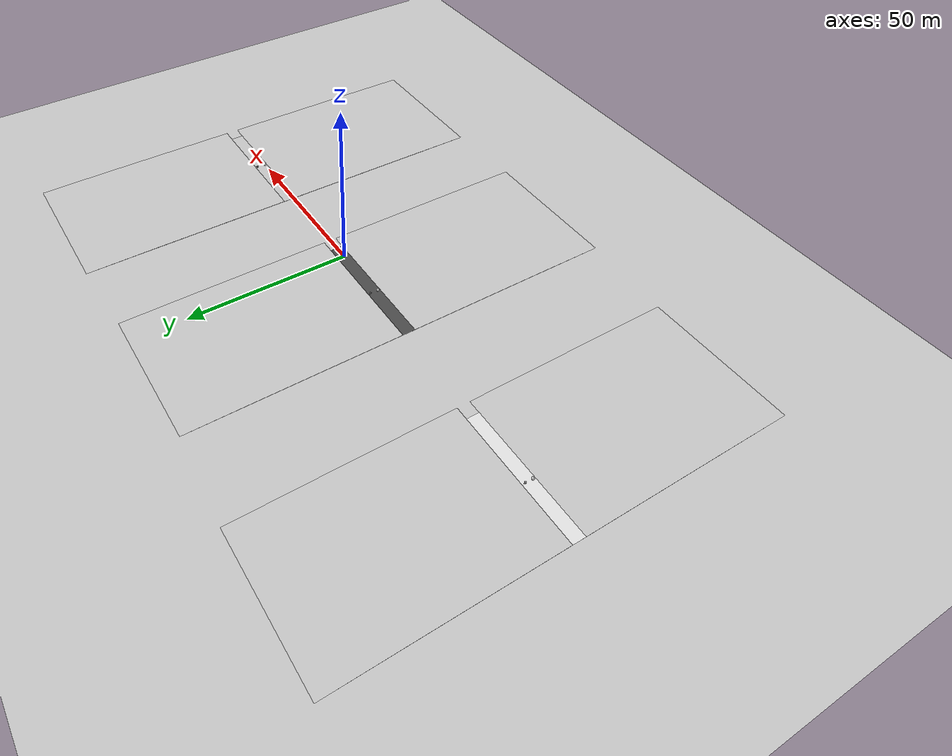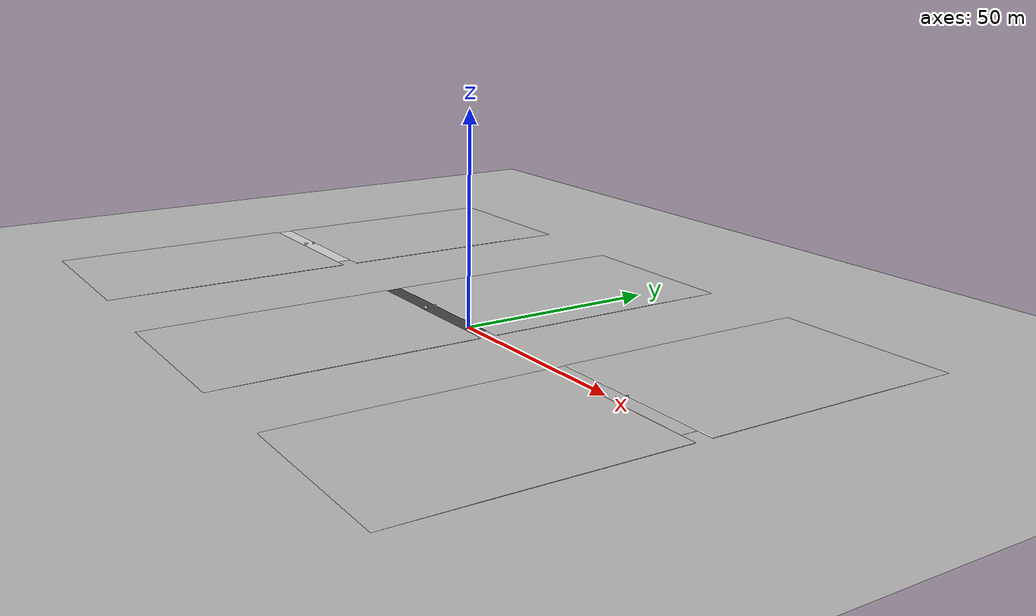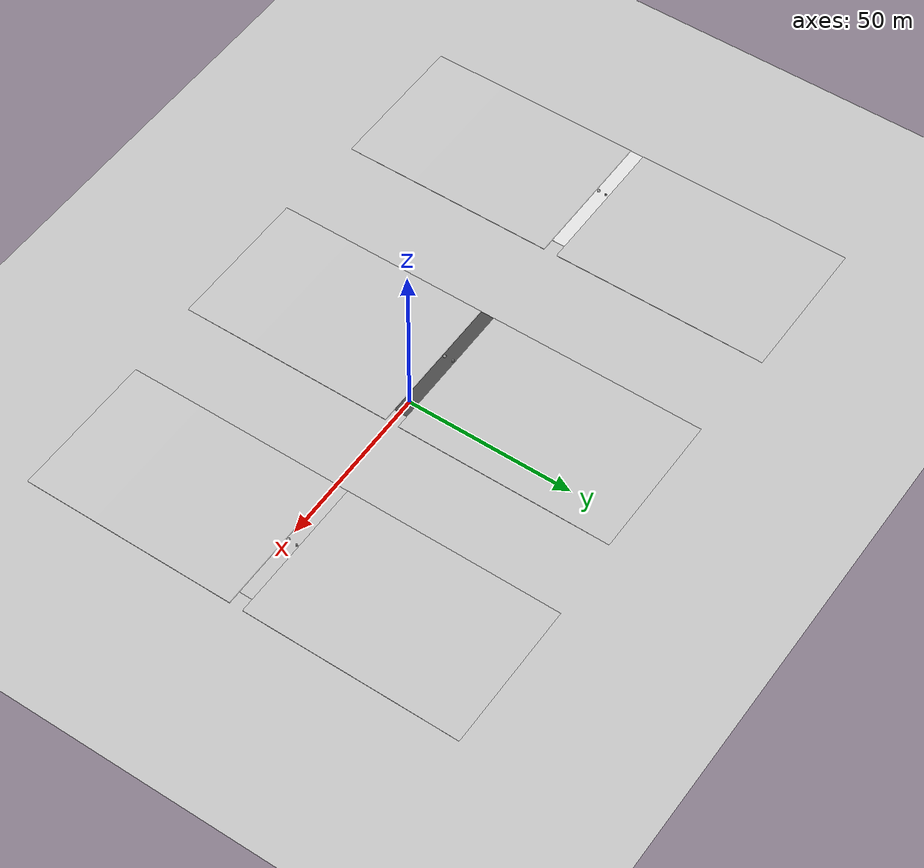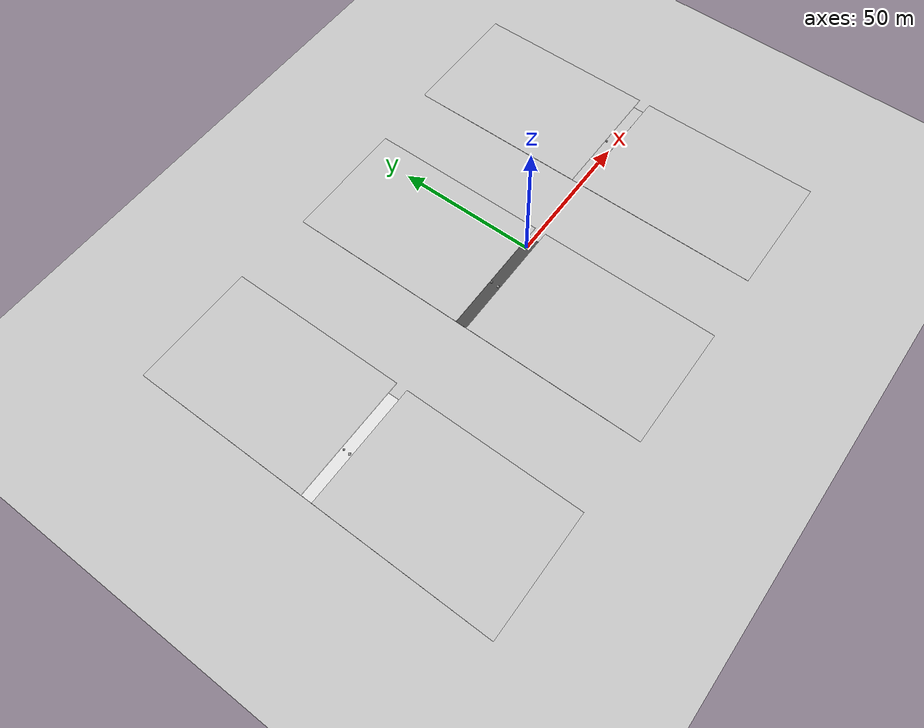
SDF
<sdf version="1.6">
 <world name="default">
  <light name="sun" type="directional">
   <pose>0 0 10 0 -0 0</pose>
   <diffuse>0.8 0.8 0.8 1</diffuse>
   <specular>0.2 0.2 0.2 1</specular>
   <attenuation>
    <range>1000</range>
    <constant>0.9</constant>
    <linear>0.01</linear>
    <quadratic>0.001</quadratic>
   </attenuation>
   <direction>-0.5 0.1 -0.9</direction>
  </light>
  <model name="ground_plane">
   <static>1</static>
   <link name="link">
    <collision name="collision">
     <geometry><plane><normal>0 0 1</normal><size>500 100</size></plane></geometry>
     <surface>
      <contact><collide_bitmask>65535</collide_bitmask></contact>
      <friction><ode><mu>100</mu><mu2>50</mu2></ode></friction>
     </surface>
    </collision>
    <visual name="visual">
     <cast_shadows>0</cast_shadows>
     <geometry><plane><normal>0 0 1</normal><size>500 100</size></plane></geometry>
     <material>
      <script><uri>file://media/materials/scripts/gazebo.material</uri><name>Gazebo/Grey</name></script>
     </material>
    </visual>
   </link>
  </model>
  <gravity>0 0 -9.8</gravity>
  <magnetic_field>6e-06 2.3e-05 -4.2e-05</magnetic_field>
  <atmosphere type="adiabatic"/>
  <physics name="default_physics" default="0" type="ode">
   <max_step_size>0.001</max_step_size>
   <real_time_factor>1</real_time_factor>
   <real_time_update_rate>1000</real_time_update_rate>
  </physics>
  <scene><ambient>0.4 0.4 0.4 1</ambient><background>0.7 0.7 0.7 1</background><shadows>1</shadows></scene>
  <spherical_coordinates>
   <surface_model>EARTH_WGS84</surface_model>
   <latitude_deg>0</latitude_deg>
   <longitude_deg>0</longitude_deg>
   <elevation>0</elevation>
   <heading_deg>0</heading_deg>
  </spherical_coordinates>
  <model name="road_dashed_two_white">
   <static>1</static>
   <link name="link">
    <collision name="collision"><geometry><box><size>40 4 0.02</size></box></geometry></collision>
    <visual name="visual">
     <cast_shadows>0</cast_shadows>
     <geometry><box><size>40 4 0.02</size></box></geometry>
     <material>
      <script>
       <uri>model://road_dashed_two_white/materials/scripts</uri>
       <uri>model://road_dashed_two_white/materials/textures</uri>
       <name>DashedTwoWhite</name>
      </script>
     </material>
    </visual>
   </link>
   <pose>-87.4652 1.8189 0 0 -0 0</pose>
  </model>
  <model name="road_plain_white">
   <static>1</static>
   <link name="link">
    <collision name="collision"><geometry><box><size>40 4 0.02</size></box></geometry></collision>
    <visual name="visual">
     <cast_shadows>0</cast_shadows>
     <geometry><box><size>40 4 0.02</size></box></geometry>
     <material>
      <ambient>0.8 0.8 0.8 1</ambient>
      <diffuse>0.8 0.8 0.8 1</diffuse>
      <specular>0.1 0.1 0.1 1</specular>
      <emissive>0 0 0 0</emissive>
     </material>
    </visual>
   </link>
   <pose>52.1611 1.44385 0 0 -0 0</pose>
  </model>
  <model name="road_light_grid">
   <static>1</static>
   <link name="link">
    <collision name="collision"><geometry><box><size>40 4 0.02</size></box></geometry></collision>
    <visual name="visual">
     <cast_shadows>0</cast_shadows>
     <geometry><box><size>40 4 0.02</size></box></geometry>
     <material>
      <script>
       <uri>model://road_light_grid/materials/scripts</uri>
       <uri>model://road_light_grid/materials/textures</uri>
       <name>RoadLightGrid</name>
      </script>
     </material>
    </visual>
   </link>
   <pose>-15.7243 0.139123 0 0 -0 0</pose>
  </model>
  <model name="unit_box_clone_2">
   <pose>-17.5286 -1.10727 0.26 0 -0 3e-06</pose>
   <link name="link">
    <inertial>
     <mass>1</mass>
     <inertia>
      <ixx>0.166667</ixx>
      <ixy>0</ixy>
      <ixz>0</ixz>
      <iyy>0.166667</iyy>
      <iyz>0</iyz>
      <izz>0.166667</izz>
     </inertia>
    </inertial>
    <collision name="collision"><geometry><box><size>0.5 0.5 0.5</size></box></geometry></collision>
    <visual name="visual">
     <geometry><box><size>0.5 0.5 0.5</size></box></geometry>
     <material>
      <script><name>Gazebo/Grey</name><uri>file://media/materials/scripts/gazebo.material</uri></script>
     </material>
    </visual>
    <visual name="visual_sphere_cue">
     <geometry><sphere><radius>0.45</radius></sphere></geometry>
     <plugin name="blink" filename="libBlinkVisualPlugin.so">
      <color_a>0 1 0 0.15</color_a>
      <color_b>0 1 0 0.15</color_b>
      <period>2</period>
      <use_wall_time>true</use_wall_time>
     </plugin>
     <material>
      <script><uri>file://media/materials/scripts/gazebo.material</uri><name>__default__</name></script>
     </material>
    </visual>
   </link>
  </model>
  <model name="unit_box_clone_3">
   <pose>-89.5889 0.565083 0.26 0 -0 3e-06</pose>
   <link name="link">
    <inertial>
     <mass>1</mass>
     <inertia>
      <ixx>0.166667</ixx>
      <ixy>0</ixy>
      <ixz>0</ixz>
      <iyy>0.166667</iyy>
      <iyz>0</iyz>
      <izz>0.166667</izz>
     </inertia>
    </inertial>
    <collision name="collision"><geometry><box><size>0.5 0.5 0.5</size></box></geometry></collision>
    <visual name="visual">
     <geometry><box><size>0.5 0.5 0.5</size></box></geometry>
     <material>
      <script><name>Gazebo/Grey</name><uri>file://media/materials/scripts/gazebo.material</uri></script>
     </material>
    </visual>
    <visual name="visual_sphere_cue">
     <geometry><sphere><radius>0.45</radius></sphere></geometry>
     <plugin name="blink" filename="libBlinkVisualPlugin.so">
      <color_a>0 1 0 0.15</color_a>
      <color_b>0 1 0 0.15</color_b>
      <period>2</period>
      <use_wall_time>true</use_wall_time>
     </plugin>
     <material>
      <script><uri>file://media/materials/scripts/gazebo.material</uri><name>__default__</name></script>
     </material>
    </visual>
   </link>
  </model>
  <model name="unit_box_clone_5">
   <pose>52.794 0.093032 0.26 0 0 -0.012581</pose>
   <link name="link">
    <inertial>
     <mass>1</mass>
     <inertia>
      <ixx>0.166667</ixx>
      <ixy>0</ixy>
      <ixz>0</ixz>
      <iyy>0.166667</iyy>
      <iyz>0</iyz>
      <izz>0.166667</izz>
     </inertia>
    </inertial>
    <collision name="collision"><geometry><box><size>0.5 0.5 0.5</size></box></geometry></collision>
    <visual name="visual">
     <geometry><box><size>0.5 0.5 0.5</size></box></geometry>
     <material>
      <script><name>Gazebo/Grey</name><uri>file://media/materials/scripts/gazebo.material</uri></script>
     </material>
    </visual>
    <visual name="visual_sphere_cue">
     <geometry><sphere><radius>0.45</radius></sphere></geometry>
     <plugin name="blink" filename="libBlinkVisualPlugin.so">
      <color_a>0 1 0 0.15</color_a>
      <color_b>0 1 0 0.15</color_b>
      <period>2</period>
      <use_wall_time>true</use_wall_time>
     </plugin>
     <material>
      <script><uri>file://media/materials/scripts/gazebo.material</uri><name>__default__</name></script>
     </material>
    </visual>
   </link>
  </model>
  <model name="unit_box_evil">
   <pose>53.0304 2.77788 0.26 0 0 -0.764275</pose>
   <link name="link">
    <inertial>
     <mass>1</mass>
     <inertia>
      <ixx>0.166667</ixx>
      <ixy>0</ixy>
      <ixz>0</ixz>
      <iyy>0.166667</iyy>
      <iyz>0</iyz>
      <izz>0.166667</izz>
     </inertia>
    </inertial>
    <collision name="collision"><geometry><box><size>0.5 0.5 0.5</size></box></geometry></collision>
    <visual name="visual">
     <geometry><box><size>0.5 0.5 0.5</size></box></geometry>
     <material>
      <script><name>Gazebo/Grey</name><uri>file://media/materials/scripts/gazebo.material</uri></script>
     </material>
    </visual>
   </link>
   <plugin name="model_push" filename="libvisual_cue_plugin.so"/>
  </model>
  <model name="unit_box_evil__2">
   <pose>-17.5221 1.48271 0.26 0 0 -0.7886</pose>
   <link name="link">
    <inertial>
     <mass>1</mass>
     <inertia>
      <ixx>0.166667</ixx>
      <ixy>0</ixy>
      <ixz>0</ixz>
      <iyy>0.166667</iyy>
      <iyz>0</iyz>
      <izz>0.166667</izz>
     </inertia>
    </inertial>
    <collision name="collision"><geometry><box><size>0.5 0.5 0.5</size></box></geometry></collision>
    <visual name="visual">
     <geometry><box><size>0.5 0.5 0.5</size></box></geometry>
     <material>
      <script><name>Gazebo/Grey</name><uri>file://media/materials/scripts/gazebo.material</uri></script>
     </material>
    </visual>
   </link>
   <plugin name="model_push" filename="libvisual_cue_plugin.so"/>
  </model>
  <model name="unit_box_evil__3">
   <pose>-89.5374 2.87473 0.26 0 0 -0.788601</pose>
   <link name="link">
    <inertial>
     <mass>1</mass>
     <inertia>
      <ixx>0.166667</ixx>
      <ixy>0</ixy>
      <ixz>0</ixz>
      <iyy>0.166667</iyy>
      <iyz>0</iyz>
      <izz>0.166667</izz>
     </inertia>
    </inertial>
    <collision name="collision"><geometry><box><size>0.5 0.5 0.5</size></box></geometry></collision>
    <visual name="visual">
     <geometry><box><size>0.5 0.5 0.5</size></box></geometry>
     <material>
      <script><name>Gazebo/Grey</name><uri>file://media/materials/scripts/gazebo.material</uri></script>
     </material>
    </visual>
   </link>
   <plugin name="model_push" filename="libvisual_cue_plugin.so"/>
  </model>
  <model name="side_step">
   <static>1</static>
   <link name="step_1">
    <collision name="collision">
     <geometry><mesh><uri>model://side_step/meshes/side_step.dae</uri><scale>22 3 0.4</scale></mesh></geometry>
    </collision>
    <visual name="visual">
     <geometry><mesh><uri>model://side_step/meshes/side_step.dae</uri><scale>22 3 0.4</scale></mesh></geometry>
     <material>
      <ambient>0.7 0.7 0.7 1</ambient>
      <diffuse>0.8 0.8 0.8 1</diffuse>
      <specular>0.1 0.1 0.1 1</specular>
      <emissive>0 0 0 0</emissive>
     </material>
    </visual>
   </link>
   <link name="step_2">
    <pose>0 9.9 0 0 -0 -3.14159</pose>
    <collision name="collision">
     <geometry><mesh><uri>model://side_step/meshes/side_step.dae</uri><scale>22 3 0.4</scale></mesh></geometry>
    </collision>
    <visual name="visual">
     <geometry><mesh><uri>model://side_step/meshes/side_step.dae</uri><scale>22 3 0.4</scale></mesh></geometry>
     <material>
      <ambient>0.7 0.7 0.7 1</ambient>
      <diffuse>0.8 0.8 0.8 1</diffuse>
      <specular>0.1 0.1 0.1 1</specular>
      <emissive>0 0 0 0</emissive>
     </material>
    </visual>
   </link>
   <pose>54.1488 -3.55849 0 0 -0 0</pose>
  </model>
  <model name="side_step_0">
   <static>1</static>
   <link name="step_1">
    <collision name="collision">
     <geometry><mesh><uri>model://side_step/meshes/side_step.dae</uri><scale>22 3 0.4</scale></mesh></geometry>
    </collision>
    <visual name="visual">
     <geometry><mesh><uri>model://side_step/meshes/side_step.dae</uri><scale>22 3 0.4</scale></mesh></geometry>
     <material>
      <ambient>0.7 0.7 0.7 1</ambient>
      <diffuse>0.8 0.8 0.8 1</diffuse>
      <specular>0.1 0.1 0.1 1</specular>
      <emissive>0 0 0 0</emissive>
     </material>
    </visual>
   </link>
   <link name="step_2">
    <pose>0 9.9 0 0 -0 -3.14159</pose>
    <collision name="collision">
     <geometry><mesh><uri>model://side_step/meshes/side_step.dae</uri><scale>22 3 0.4</scale></mesh></geometry>
    </collision>
    <visual name="visual">
     <geometry><mesh><uri>model://side_step/meshes/side_step.dae</uri><scale>22 3 0.4</scale></mesh></geometry>
     <material>
      <ambient>0.7 0.7 0.7 1</ambient>
      <diffuse>0.8 0.8 0.8 1</diffuse>
      <specular>0.1 0.1 0.1 1</specular>
      <emissive>0 0 0 0</emissive>
     </material>
    </visual>
   </link>
   <pose>-85.4925 -3.13112 0 0 -0 0</pose>
  </model>
  <model name="side_step_1">
   <static>1</static>
   <link name="step_1">
    <collision name="collision">
     <geometry><mesh><uri>model://side_step/meshes/side_step.dae</uri><scale>22 3 0.4</scale></mesh></geometry>
    </collision>
    <visual name="visual">
     <geometry><mesh><uri>model://side_step/meshes/side_step.dae</uri><scale>22 3 0.4</scale></mesh></geometry>
     <material>
      <ambient>0.7 0.7 0.7 1</ambient>
      <diffuse>0.8 0.8 0.8 1</diffuse>
      <specular>0.1 0.1 0.1 1</specular>
      <emissive>0 0 0 0</emissive>
     </material>
    </visual>
   </link>
   <link name="step_2">
    <pose>0 9.9 0 0 -0 -3.14159</pose>
    <collision name="collision">
     <geometry><mesh><uri>model://side_step/meshes/side_step.dae</uri><scale>22 3 0.4</scale></mesh></geometry>
    </collision>
    <visual name="visual">
     <geometry><mesh><uri>model://side_step/meshes/side_step.dae</uri><scale>22 3 0.4</scale></mesh></geometry>
     <material>
      <ambient>0.7 0.7 0.7 1</ambient>
      <diffuse>0.8 0.8 0.8 1</diffuse>
      <specular>0.1 0.1 0.1 1</specular>
      <emissive>0 0 0 0</emissive>
     </material>
    </visual>
   </link>
   <pose>-13.7257 -4.81346 0 0 -0 0</pose>
  </model>
 </world>
</sdf>
